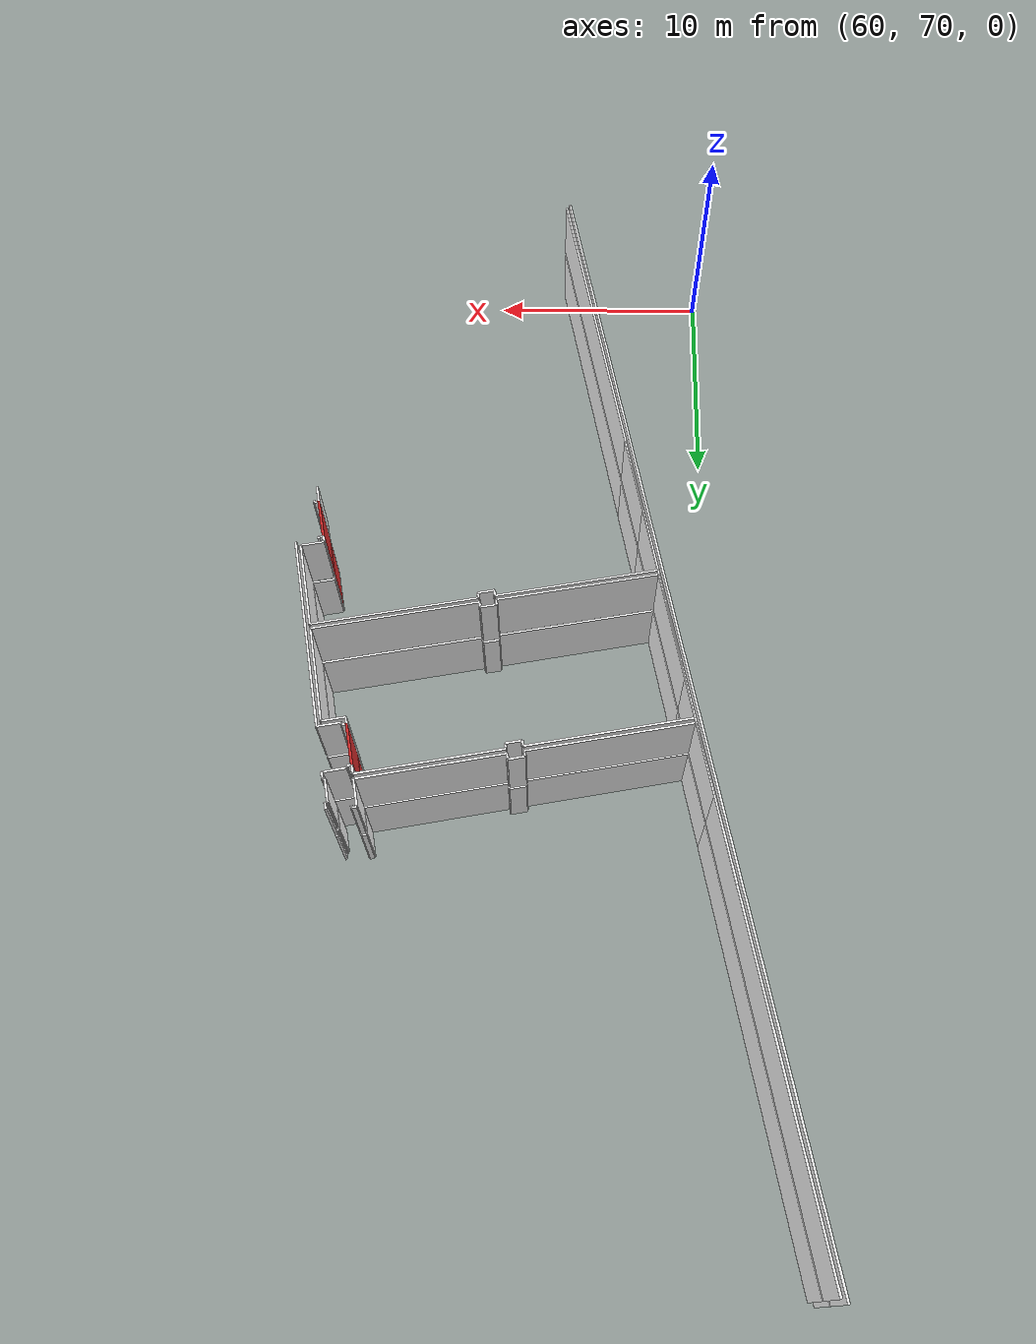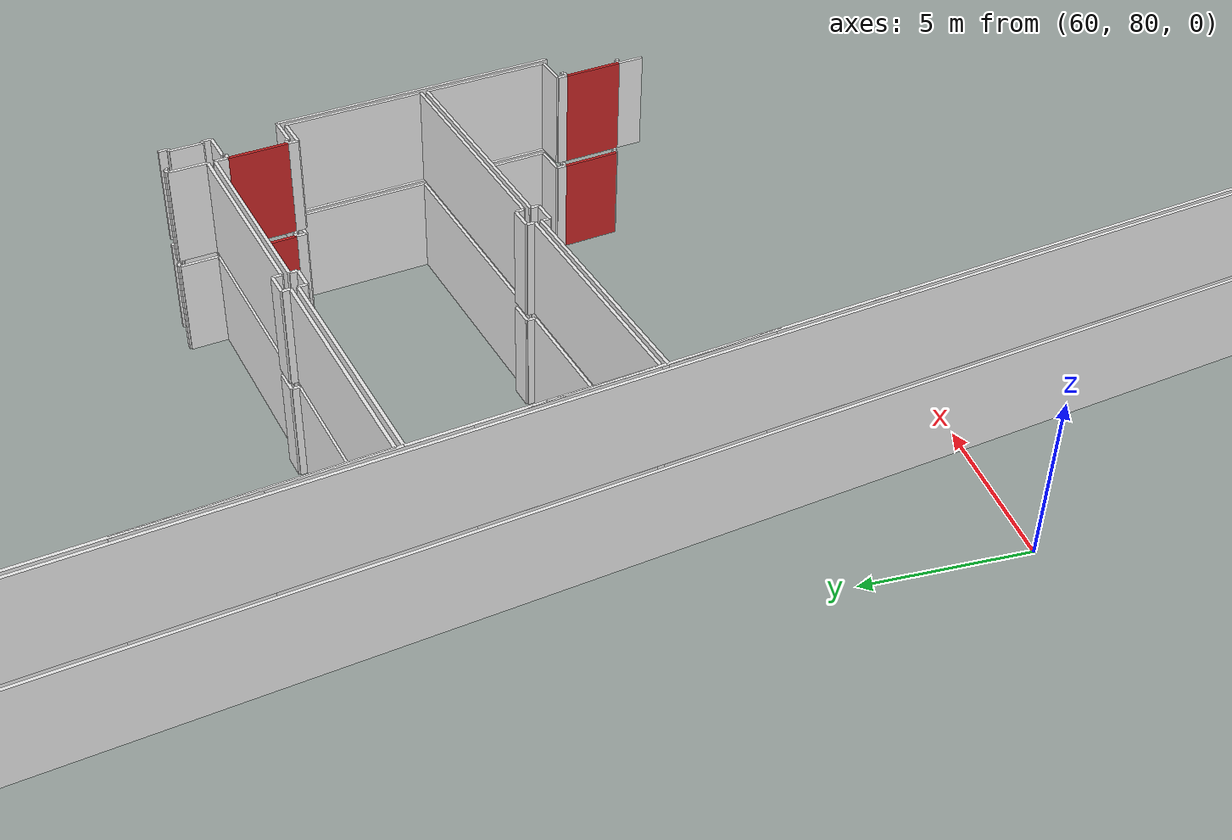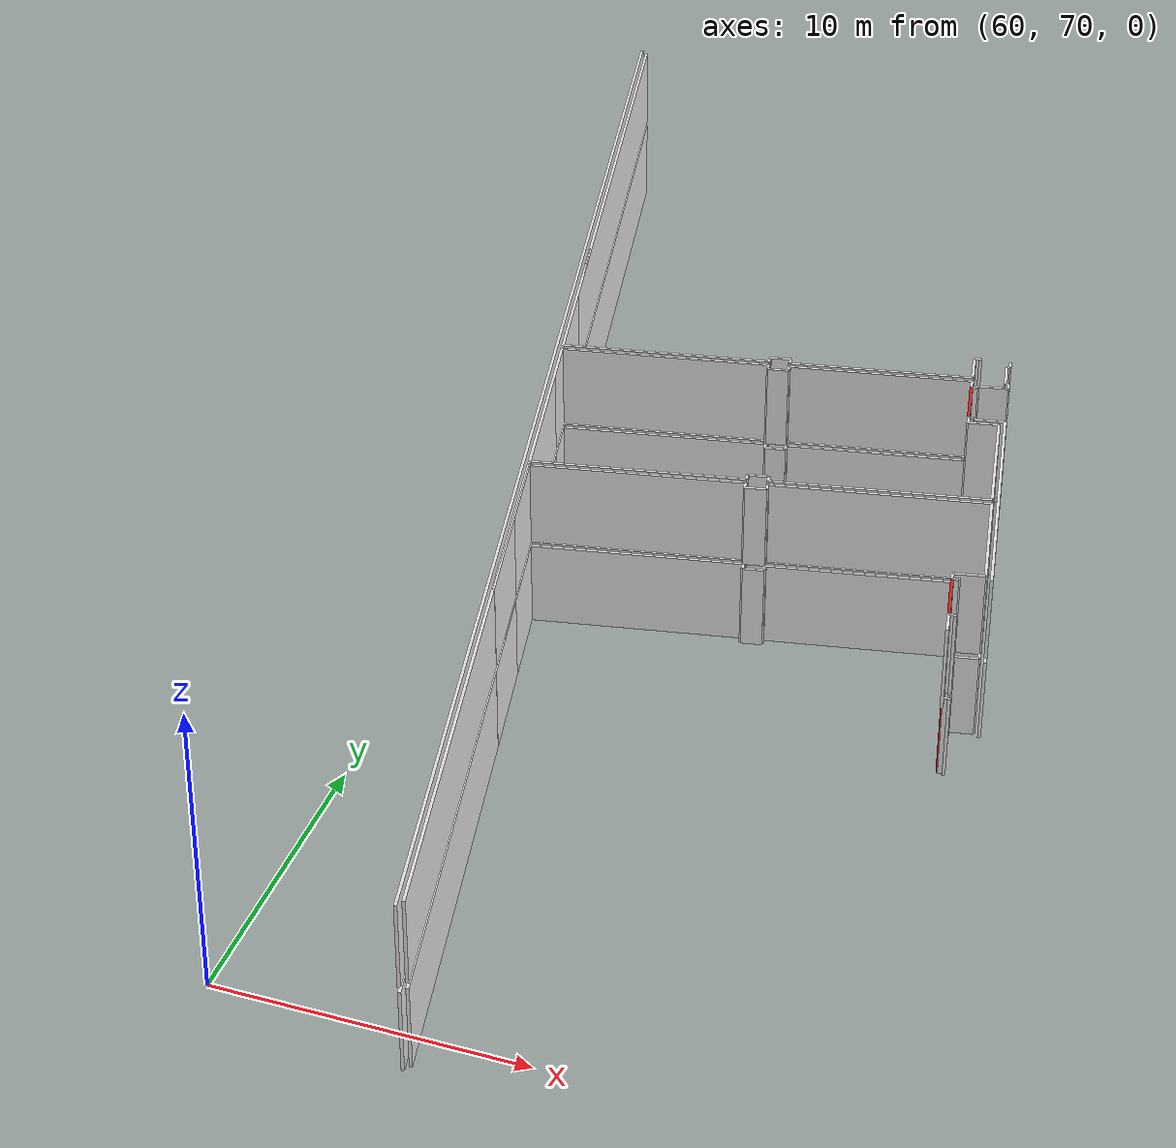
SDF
<sdf version="1.6">
 <world name="default">
  <model name="wall_75.1_97.8_0.0">
   <static>true</static>
   <pose>75.0800000000163 97.75 1.5 0 0 -1.3690339824572944</pose>
   <link name="link">
    <visual name="visual">
     <geometry><box><size>1.7964409256090668 0.1 3</size></box></geometry>
     <material>
      <script><uri>file://media/materials/scripts/gazebo.material</uri><name>Gazebo/Red</name></script>
     </material>
    </visual>
   </link>
  </model>
  <model name="wall_77.2_87.2_0.0">
   <static>true</static>
   <pose>77.19000000000233 87.18999999994412 1.5 0 0 -1.3690339824572944</pose>
   <link name="link">
    <visual name="visual">
     <geometry><box><size>1.7964409256090668 0.1 3</size></box></geometry>
     <material>
      <script><uri>file://media/materials/scripts/gazebo.material</uri><name>Gazebo/Red</name></script>
     </material>
    </visual>
   </link>
  </model>
  <model name="wall_60.6_99.9_0.0">
   <static>true</static>
   <pose>60.57499999998254 99.86999999987893 1.5 0 0 -1.3731111637109774</pose>
   <link name="link">
    <visual name="visual">
     <geometry><box><size>6.771890430431879 0.1 3</size></box></geometry>
     <material>
      <script><uri>file://media/materials/scripts/gazebo.material</uri><name>Gazebo/White</name></script>
     </material>
    </visual>
   </link>
  </model>
  <model name="wall_64.7_97.2_0.0">
   <static>true</static>
   <pose>64.67499999998836 97.2249999998603 1.5 0 0 0.19403422798469777</pose>
   <link name="link">
    <visual name="visual">
     <geometry><box><size>7.001385577168813 0.1 3</size></box></geometry>
     <material>
      <script><uri>file://media/materials/scripts/gazebo.material</uri><name>Gazebo/White</name></script>
     </material>
    </visual>
   </link>
  </model>
  <model name="wall_68.1_98.0_0.0">
   <static>true</static>
   <pose>68.08499999999185 98.02000000001863 1.5 0 0 1.7761917157522207</pose>
   <link name="link">
    <visual name="visual">
     <geometry><box><size>0.24515301365907008 0.1 3</size></box></geometry>
     <material>
      <script><uri>file://media/materials/scripts/gazebo.material</uri><name>Gazebo/White</name></script>
     </material>
    </visual>
   </link>
  </model>
  <model name="wall_68.4_98.2_0.0">
   <static>true</static>
   <pose>68.40499999999884 98.20999999996275 1.5 0 0 0.20018106749853645</pose>
   <link name="link">
    <visual name="visual">
     <geometry><box><size>0.7040596564988906 0.1 3</size></box></geometry>
     <material>
      <script><uri>file://media/materials/scripts/gazebo.material</uri><name>Gazebo/White</name></script>
     </material>
    </visual>
   </link>
  </model>
  <model name="wall_68.8_98.2_0.0">
   <static>true</static>
   <pose>68.76999999998952 98.15499999979511 1.5 0 0 -1.412141064690222</pose>
   <link name="link">
    <visual name="visual">
     <geometry><box><size>0.2531797780201326 0.1 3</size></box></geometry>
     <material>
      <script><uri>file://media/materials/scripts/gazebo.material</uri><name>Gazebo/White</name></script>
     </material>
    </visual>
   </link>
  </model>
  <model name="wall_71.8_98.6_0.0">
   <static>true</static>
   <pose>71.78999999997905 98.625 1.5 0 0 0.1957924833792323</pose>
   <link name="link">
    <visual name="visual">
     <geometry><box><size>6.11687011477073 0.1 3</size></box></geometry>
     <material>
      <script><uri>file://media/materials/scripts/gazebo.material</uri><name>Gazebo/White</name></script>
     </material>
    </visual>
   </link>
  </model>
  <model name="wall_74.7_99.8_0.0">
   <static>true</static>
   <pose>74.67499999998836 99.80000000004657 1.5 0 0 1.76653351340899</pose>
   <link name="link">
    <visual name="visual">
     <geometry><box><size>1.1825819207381807 0.1 3</size></box></geometry>
     <material>
      <script><uri>file://media/materials/scripts/gazebo.material</uri><name>Gazebo/White</name></script>
     </material>
    </visual>
   </link>
  </model>
  <model name="wall_74.9_98.8_0.0">
   <static>true</static>
   <pose>74.86500000001979 98.81999999983236 1.5 0 0 1.7529646373378367</pose>
   <link name="link">
    <visual name="visual">
     <geometry><box><size>0.3863935816185891 0.1 3</size></box></geometry>
     <material>
      <script><uri>file://media/materials/scripts/gazebo.material</uri><name>Gazebo/White</name></script>
     </material>
    </visual>
   </link>
  </model>
  <model name="wall_71.8_98.4_0.0">
   <static>true</static>
   <pose>71.8300000000163 98.4199999999255 1.5 0 0 -2.947404266883771</pose>
   <link name="link">
    <visual name="visual">
     <geometry><box><size>6.114932542497641 0.1 3</size></box></geometry>
     <material>
      <script><uri>file://media/materials/scripts/gazebo.material</uri><name>Gazebo/White</name></script>
     </material>
    </visual>
   </link>
  </model>
  <model name="wall_68.9_97.7_0.0">
   <static>true</static>
   <pose>68.85500000001048 97.70999999996275 1.5 0 0 -1.3654009378375724</pose>
   <link name="link">
    <visual name="visual">
     <geometry><box><size>0.24515301365907008 0.1 3</size></box></geometry>
     <material>
      <script><uri>file://media/materials/scripts/gazebo.material</uri><name>Gazebo/White</name></script>
     </material>
    </visual>
   </link>
  </model>
  <model name="wall_68.5_97.5_0.0">
   <static>true</static>
   <pose>68.54000000000815 97.52499999990687 1.5 0 0 -2.952695472868832</pose>
   <link name="link">
    <visual name="visual">
     <geometry><box><size>0.6923149571989928 0.1 3</size></box></geometry>
     <material>
      <script><uri>file://media/materials/scripts/gazebo.material</uri><name>Gazebo/White</name></script>
     </material>
    </visual>
   </link>
  </model>
  <model name="wall_68.2_97.6_0.0">
   <static>true</static>
   <pose>68.17500000001746 97.5800000000745 1.5 0 0 1.7761917157522207</pose>
   <link name="link">
    <visual name="visual">
     <geometry><box><size>0.24515301365907008 0.1 3</size></box></geometry>
     <material>
      <script><uri>file://media/materials/scripts/gazebo.material</uri><name>Gazebo/White</name></script>
     </material>
    </visual>
   </link>
  </model>
  <model name="wall_64.7_97.0_0.0">
   <static>true</static>
   <pose>64.71500000002561 97.02000000001863 1.5 0 0 -2.946157326410305</pose>
   <link name="link">
    <visual name="visual">
     <geometry><box><size>7.003320641013659 0.1 3</size></box></geometry>
     <material>
      <script><uri>file://media/materials/scripts/gazebo.material</uri><name>Gazebo/White</name></script>
     </material>
    </visual>
   </link>
  </model>
  <model name="wall_61.9_93.0_0.0">
   <static>true</static>
   <pose>61.94000000000233 93.02000000001863 1.5 0 0 -1.3745595149757288</pose>
   <link name="link">
    <visual name="visual">
     <geometry><box><size>6.769933529615509 0.1 3</size></box></geometry>
     <material>
      <script><uri>file://media/materials/scripts/gazebo.material</uri><name>Gazebo/White</name></script>
     </material>
    </visual>
   </link>
  </model>
  <model name="wall_66.0_90.4_0.0">
   <static>true</static>
   <pose>66.03499999997439 90.38000000012107 1.5 0 0 0.1954353271142626</pose>
   <link name="link">
    <visual name="visual">
     <geometry><box><size>7.0033206409232305 0.1 3</size></box></geometry>
     <material>
      <script><uri>file://media/materials/scripts/gazebo.material</uri><name>Gazebo/White</name></script>
     </material>
    </visual>
   </link>
  </model>
  <model name="wall_69.4_91.2_0.0">
   <static>true</static>
   <pose>69.44999999998254 91.17999999993481 1.5 0 0 1.7359450042881825</pose>
   <link name="link">
    <visual name="visual">
     <geometry><box><size>0.2433105009696346 0.1 3</size></box></geometry>
     <material>
      <script><uri>file://media/materials/scripts/gazebo.material</uri><name>Gazebo/White</name></script>
     </material>
    </visual>
   </link>
  </model>
  <model name="wall_69.8_91.4_0.0">
   <static>true</static>
   <pose>69.76999999998952 91.36499999999069 1.5 0 0 0.1888971813816114</pose>
   <link name="link">
    <visual name="visual">
     <geometry><box><size>0.6923149572864328 0.1 3</size></box></geometry>
     <material>
      <script><uri>file://media/materials/scripts/gazebo.material</uri><name>Gazebo/White</name></script>
     </material>
    </visual>
   </link>
  </model>
  <model name="wall_70.1_91.3_0.0">
   <static>true</static>
   <pose>70.13499999998021 91.31000000005588 1.5 0 0 -1.3654009378375724</pose>
   <link name="link">
    <visual name="visual">
     <geometry><box><size>0.24515301365907008 0.1 3</size></box></geometry>
     <material>
      <script><uri>file://media/materials/scripts/gazebo.material</uri><name>Gazebo/White</name></script>
     </material>
    </visual>
   </link>
  </model>
  <model name="wall_73.6_91.9_0.0">
   <static>true</static>
   <pose>73.64499999998952 91.87999999988824 1.5 0 0 0.1954634617685791</pose>
   <link name="link">
    <visual name="visual">
     <geometry><box><size>7.105300838114702 0.1 3</size></box></geometry>
     <material>
      <script><uri>file://media/materials/scripts/gazebo.material</uri><name>Gazebo/White</name></script>
     </material>
    </visual>
   </link>
  </model>
  <model name="wall_76.7_94.7_0.0">
   <static>true</static>
   <pose>76.71499999999651 94.6699999999255 1.5 0 0 1.765901464626056</pose>
   <link name="link">
    <visual name="visual">
     <geometry><box><size>4.281226459975188 0.1 3</size></box></geometry>
     <material>
      <script><uri>file://media/materials/scripts/gazebo.material</uri><name>Gazebo/White</name></script>
     </material>
    </visual>
   </link>
  </model>
  <model name="wall_75.8_96.7_0.0">
   <static>true</static>
   <pose>75.80999999999767 96.6699999999255 1.5 0 0 -2.9402755450289626</pose>
   <link name="link">
    <visual name="visual">
     <geometry><box><size>1.0001999800229942 0.1 3</size></box></geometry>
     <material>
      <script><uri>file://media/materials/scripts/gazebo.material</uri><name>Gazebo/White</name></script>
     </material>
    </visual>
   </link>
  </model>
  <model name="wall_75.3_96.7_0.0">
   <static>true</static>
   <pose>75.29000000000815 96.71999999997206 1.5 0 0 1.7681918864582145</pose>
   <link name="link">
    <visual name="visual">
     <geometry><box><size>0.30594117108908153 0.1 3</size></box></geometry>
     <material>
      <script><uri>file://media/materials/scripts/gazebo.material</uri><name>Gazebo/White</name></script>
     </material>
    </visual>
   </link>
  </model>
  <model name="wall_77.0_88.2_0.0">
   <static>true</static>
   <pose>76.98000000001048 88.21499999985099 1.5 0 0 1.7748143063542596</pose>
   <link name="link">
    <visual name="visual">
     <geometry><box><size>0.2961418579352255 0.1 3</size></box></geometry>
     <material>
      <script><uri>file://media/materials/scripts/gazebo.material</uri><name>Gazebo/White</name></script>
     </material>
    </visual>
   </link>
  </model>
  <model name="wall_77.4_88.5_0.0">
   <static>true</static>
   <pose>77.44500000000698 88.45999999996275 1.5 0 0 0.19933730516491843</pose>
   <link name="link">
    <visual name="visual">
     <geometry><box><size>1.0100000000277551 0.1 3</size></box></geometry>
     <material>
      <script><uri>file://media/materials/scripts/gazebo.material</uri><name>Gazebo/White</name></script>
     </material>
    </visual>
   </link>
  </model>
  <model name="wall_77.6_90.5_0.0">
   <static>true</static>
   <pose>77.55499999999302 90.46500000008382 1.5 0 0 1.7702100473778921</pose>
   <link name="link">
    <visual name="visual">
     <geometry><box><size>3.88702971437761 0.1 3</size></box></geometry>
     <material>
      <script><uri>file://media/materials/scripts/gazebo.material</uri><name>Gazebo/White</name></script>
     </material>
    </visual>
   </link>
  </model>
  <model name="wall_73.7_91.7_0.0">
   <static>true</static>
   <pose>73.68499999999767 91.68000000016764 1.5 0 0 -2.946129191819623</pose>
   <link name="link">
    <visual name="visual">
     <geometry><box><size>7.105300838057603 0.1 3</size></box></geometry>
     <material>
      <script><uri>file://media/materials/scripts/gazebo.material</uri><name>Gazebo/White</name></script>
     </material>
    </visual>
   </link>
  </model>
  <model name="wall_70.2_90.9_0.0">
   <static>true</static>
   <pose>70.22500000000582 90.87000000011176 1.5 0 0 -1.3654009378375724</pose>
   <link name="link">
    <visual name="visual">
     <geometry><box><size>0.24515301365907008 0.1 3</size></box></geometry>
     <material>
      <script><uri>file://media/materials/scripts/gazebo.material</uri><name>Gazebo/White</name></script>
     </material>
    </visual>
   </link>
  </model>
  <model name="wall_69.9_90.7_0.0">
   <static>true</static>
   <pose>69.90499999999884 90.67999999993481 1.5 0 0 -2.9414115854430696</pose>
   <link name="link">
    <visual name="visual">
     <geometry><box><size>0.7040596565914858 0.1 3</size></box></geometry>
     <material>
      <script><uri>file://media/materials/scripts/gazebo.material</uri><name>Gazebo/White</name></script>
     </material>
    </visual>
   </link>
  </model>
  <model name="wall_69.5_90.7_0.0">
   <static>true</static>
   <pose>69.53500000000349 90.73999999999069 1.5 0 0 1.7607846144977208</pose>
   <link name="link">
    <visual name="visual">
     <geometry><box><size>0.2647640461330629 0.1 3</size></box></geometry>
     <material>
      <script><uri>file://media/materials/scripts/gazebo.material</uri><name>Gazebo/White</name></script>
     </material>
    </visual>
   </link>
  </model>
  <model name="wall_66.1_90.2_0.0">
   <static>true</static>
   <pose>66.07500000001164 90.18500000005588 1.5 0 0 -2.94475700407996</pose>
   <link name="link">
    <visual name="visual">
     <geometry><box><size>7.005269445227802 0.1 3</size></box></geometry>
     <material>
      <script><uri>file://media/materials/scripts/gazebo.material</uri><name>Gazebo/White</name></script>
     </material>
    </visual>
   </link>
  </model>
  <model name="wall_63.3_86.2_0.0">
   <static>true</static>
   <pose>63.304999999993015 86.17999999993481 1.5 0 0 -1.3731111637194056</pose>
   <link name="link">
    <visual name="visual">
     <geometry><box><size>6.771890430420447 0.1 3</size></box></geometry>
     <material>
      <script><uri>file://media/materials/scripts/gazebo.material</uri><name>Gazebo/White</name></script>
     </material>
    </visual>
   </link>
  </model>
  <model name="wall_77.6_86.3_0.0">
   <static>true</static>
   <pose>77.57000000000698 86.30000000004657 1.5 0 0 1.7681918866447774</pose>
   <link name="link">
    <visual name="visual">
     <geometry><box><size>0.10198039036683233 0.1 3</size></box></geometry>
     <material>
      <script><uri>file://media/materials/scripts/gazebo.material</uri><name>Gazebo/White</name></script>
     </material>
    </visual>
   </link>
  </model>
  <model name="wall_77.5_86.3_0.0">
   <static>true</static>
   <pose>77.46499999999651 86.3300000000745 1.5 0 0 -2.9340964269693144</pose>
   <link name="link">
    <visual name="visual">
     <geometry><box><size>0.19416487839942884 0.1 3</size></box></geometry>
     <material>
      <script><uri>file://media/materials/scripts/gazebo.material</uri><name>Gazebo/White</name></script>
     </material>
    </visual>
   </link>
  </model>
  <model name="wall_77.1_88.1_0.0">
   <static>true</static>
   <pose>77.11000000001513 88.08999999985099 1.5 0 0 0.19739556001778746</pose>
   <link name="link">
    <visual name="visual">
     <geometry><box><size>0.20396078056243275 0.1 3</size></box></geometry>
     <material>
      <script><uri>file://media/materials/scripts/gazebo.material</uri><name>Gazebo/White</name></script>
     </material>
    </visual>
   </link>
  </model>
  <model name="wall_77.2_88.2_0.0">
   <static>true</static>
   <pose>77.20000000001164 88.15500000002794 1.5 0 0 1.7894652721210018</pose>
   <link name="link">
    <visual name="visual">
     <geometry><box><size>0.09219544488607884 0.1 3</size></box></geometry>
     <material>
      <script><uri>file://media/materials/scripts/gazebo.material</uri><name>Gazebo/White</name></script>
     </material>
    </visual>
   </link>
  </model>
  <model name="wall_77.3_92.7_0.0">
   <static>true</static>
   <pose>77.30999999999767 92.69999999995343 1.5 0 0 1.768191886639571</pose>
   <link name="link">
    <visual name="visual">
     <geometry><box><size>8.770313563465434 0.1 3</size></box></geometry>
     <material>
      <script><uri>file://media/materials/scripts/gazebo.material</uri><name>Gazebo/White</name></script>
     </material>
    </visual>
   </link>
  </model>
  <model name="wall_76.0_96.9_0.0">
   <static>true</static>
   <pose>75.95999999999185 96.90500000002794 1.5 0 0 -2.950090935182675</pose>
   <link name="link">
    <visual name="visual">
     <geometry><box><size>0.9982484660926583 0.1 3</size></box></geometry>
     <material>
      <script><uri>file://media/materials/scripts/gazebo.material</uri><name>Gazebo/White</name></script>
     </material>
    </visual>
   </link>
  </model>
  <model name="wall_75.5_96.9_0.0">
   <static>true</static>
   <pose>75.45999999999185 96.85499999998137 1.5 0 0 1.789465272600359</pose>
   <link name="link">
    <visual name="visual">
     <geometry><box><size>0.0921954444188793 0.1 3</size></box></geometry>
     <material>
      <script><uri>file://media/materials/scripts/gazebo.material</uri><name>Gazebo/White</name></script>
     </material>
    </visual>
   </link>
  </model>
  <model name="wall_75.4_96.9_0.0">
   <static>true</static>
   <pose>75.35500000001048 96.88500000000931 1.5 0 0 -2.9849907776618085</pose>
   <link name="link">
    <visual name="visual">
     <geometry><box><size>0.19235384058705793 0.1 3</size></box></geometry>
     <material>
      <script><uri>file://media/materials/scripts/gazebo.material</uri><name>Gazebo/White</name></script>
     </material>
    </visual>
   </link>
  </model>
  <model name="wall_75.0_98.6_0.0">
   <static>true</static>
   <pose>75.0 98.64999999990687 1.5 0 0 0.1973955600737564</pose>
   <link name="link">
    <visual name="visual">
     <geometry><box><size>0.20396078050535543 0.1 3</size></box></geometry>
     <material>
      <script><uri>file://media/materials/scripts/gazebo.material</uri><name>Gazebo/White</name></script>
     </material>
    </visual>
   </link>
  </model>
  <model name="wall_75.1_98.7_0.0">
   <static>true</static>
   <pose>75.09500000000116 98.71499999985099 1.5 0 0 1.6814535476138674</pose>
   <link name="link">
    <visual name="visual">
     <geometry><box><size>0.09055385122787446 0.1 3</size></box></geometry>
     <material>
      <script><uri>file://media/materials/scripts/gazebo.material</uri><name>Gazebo/White</name></script>
     </material>
    </visual>
   </link>
  </model>
  <model name="wall_75.6_98.9_0.0">
   <static>true</static>
   <pose>75.57500000001164 98.85999999986961 1.5 0 0 0.20333608421816718</pose>
   <link name="link">
    <visual name="visual">
     <geometry><box><size>0.99040395799911 0.1 3</size></box></geometry>
     <material>
      <script><uri>file://media/materials/scripts/gazebo.material</uri><name>Gazebo/White</name></script>
     </material>
    </visual>
   </link>
  </model>
  <model name="wall_76.0_99.1_0.0">
   <static>true</static>
   <pose>76.02999999999884 99.10499999998137 1.5 0 0 1.7748143063542596</pose>
   <link name="link">
    <visual name="visual">
     <geometry><box><size>0.2961418579352255 0.1 3</size></box></geometry>
     <material>
      <script><uri>file://media/materials/scripts/gazebo.material</uri><name>Gazebo/White</name></script>
     </material>
    </visual>
   </link>
  </model>
  <model name="wall_76.0_99.2_0.0">
   <static>true</static>
   <pose>75.9549999999872 99.23999999999069 1.5 0 0 -2.922923707578892</pose>
   <link name="link">
    <visual name="visual">
     <geometry><box><size>0.092195444601971 0.1 3</size></box></geometry>
     <material>
      <script><uri>file://media/materials/scripts/gazebo.material</uri><name>Gazebo/White</name></script>
     </material>
    </visual>
   </link>
  </model>
  <model name="wall_75.8_99.7_0.0">
   <static>true</static>
   <pose>75.80999999999767 99.71999999997206 1.5 0 0 1.7721134351276446</pose>
   <link name="link">
    <visual name="visual">
     <geometry><box><size>1.0001999799764374 0.1 3</size></box></geometry>
     <material>
      <script><uri>file://media/materials/scripts/gazebo.material</uri><name>Gazebo/White</name></script>
     </material>
    </visual>
   </link>
  </model>
  <model name="wall_75.8_100.2_0.0">
   <static>true</static>
   <pose>75.76000000000931 100.21999999997206 1.5 0 0 0.1973955600737564</pose>
   <link name="link">
    <visual name="visual">
     <geometry><box><size>0.10198039025267772 0.1 3</size></box></geometry>
     <material>
      <script><uri>file://media/materials/scripts/gazebo.material</uri><name>Gazebo/White</name></script>
     </material>
    </visual>
   </link>
  </model>
  <model name="wall_75.8_100.4_0.0">
   <static>true</static>
   <pose>75.77999999999884 100.375 1.5 0 0 1.7748143063542596</pose>
   <link name="link">
    <visual name="visual">
     <geometry><box><size>0.2961418579352255 0.1 3</size></box></geometry>
     <material>
      <script><uri>file://media/materials/scripts/gazebo.material</uri><name>Gazebo/White</name></script>
     </material>
    </visual>
   </link>
  </model>
  <model name="wall_74.8_100.4_0.0">
   <static>true</static>
   <pose>74.76000000000931 100.375 1.5 0 0 1.7894652732166754</pose>
   <link name="link">
    <visual name="visual">
     <geometry><box><size>0.0921954444315063 0.1 3</size></box></geometry>
     <material>
      <script><uri>file://media/materials/scripts/gazebo.material</uri><name>Gazebo/White</name></script>
     </material>
    </visual>
   </link>
  </model>
  <model name="wall_74.7_100.4_0.0">
   <static>true</static>
   <pose>74.65499999999884 100.39999999990687 1.5 0 0 -2.9340964269693144</pose>
   <link name="link">
    <visual name="visual">
     <geometry><box><size>0.19416487839942884 0.1 3</size></box></geometry>
     <material>
      <script><uri>file://media/materials/scripts/gazebo.material</uri><name>Gazebo/White</name></script>
     </material>
    </visual>
   </link>
  </model>
  <model name="wall_61.7_93.1_0.0">
   <static>true</static>
   <pose>61.72499999997672 93.08999999985099 1.5 0 0 -1.3737551674021267</pose>
   <link name="link">
    <visual name="visual">
     <geometry><box><size>49.803695645859904 0.1 3</size></box></geometry>
     <material>
      <script><uri>file://media/materials/scripts/gazebo.material</uri><name>Gazebo/White</name></script>
     </material>
    </visual>
   </link>
  </model>
  <model name="wall_61.9_93.1_0.0">
   <static>true</static>
   <pose>61.920000000012806 93.125 1.5 0 0 1.767596435957684</pose>
   <link name="link">
    <visual name="visual">
     <geometry><box><size>49.4036243611494 0.1 3</size></box></geometry>
     <material>
      <script><uri>file://media/materials/scripts/gazebo.material</uri><name>Gazebo/White</name></script>
     </material>
    </visual>
   </link>
  </model>
  <model name="wall_75.1_97.8_3.2">
   <static>true</static>
   <pose>75.0800000000163 97.75 4.7 0 0 -1.3690339824572944</pose>
   <link name="link">
    <visual name="visual">
     <geometry><box><size>1.7964409256090668 0.1 3</size></box></geometry>
     <material>
      <script><uri>file://media/materials/scripts/gazebo.material</uri><name>Gazebo/Red</name></script>
     </material>
    </visual>
   </link>
  </model>
  <model name="wall_77.2_87.2_3.2">
   <static>true</static>
   <pose>77.19000000000233 87.18999999994412 4.7 0 0 -1.3690339824572944</pose>
   <link name="link">
    <visual name="visual">
     <geometry><box><size>1.7964409256090668 0.1 3</size></box></geometry>
     <material>
      <script><uri>file://media/materials/scripts/gazebo.material</uri><name>Gazebo/Red</name></script>
     </material>
    </visual>
   </link>
  </model>
  <model name="wall_60.6_99.9_3.2">
   <static>true</static>
   <pose>60.57499999998254 99.86999999987893 4.7 0 0 -1.3731111637109774</pose>
   <link name="link">
    <visual name="visual">
     <geometry><box><size>6.771890430431879 0.1 3</size></box></geometry>
     <material>
      <script><uri>file://media/materials/scripts/gazebo.material</uri><name>Gazebo/White</name></script>
     </material>
    </visual>
   </link>
  </model>
  <model name="wall_64.7_97.2_3.2">
   <static>true</static>
   <pose>64.67499999998836 97.2249999998603 4.7 0 0 0.19403422798469777</pose>
   <link name="link">
    <visual name="visual">
     <geometry><box><size>7.001385577168813 0.1 3</size></box></geometry>
     <material>
      <script><uri>file://media/materials/scripts/gazebo.material</uri><name>Gazebo/White</name></script>
     </material>
    </visual>
   </link>
  </model>
  <model name="wall_68.1_98.0_3.2">
   <static>true</static>
   <pose>68.08499999999185 98.02000000001863 4.7 0 0 1.7761917157522207</pose>
   <link name="link">
    <visual name="visual">
     <geometry><box><size>0.24515301365907008 0.1 3</size></box></geometry>
     <material>
      <script><uri>file://media/materials/scripts/gazebo.material</uri><name>Gazebo/White</name></script>
     </material>
    </visual>
   </link>
  </model>
  <model name="wall_68.4_98.2_3.2">
   <static>true</static>
   <pose>68.40499999999884 98.20999999996275 4.7 0 0 0.20018106749853645</pose>
   <link name="link">
    <visual name="visual">
     <geometry><box><size>0.7040596564988906 0.1 3</size></box></geometry>
     <material>
      <script><uri>file://media/materials/scripts/gazebo.material</uri><name>Gazebo/White</name></script>
     </material>
    </visual>
   </link>
  </model>
  <model name="wall_68.8_98.2_3.2">
   <static>true</static>
   <pose>68.76999999998952 98.15499999979511 4.7 0 0 -1.412141064690222</pose>
   <link name="link">
    <visual name="visual">
     <geometry><box><size>0.2531797780201326 0.1 3</size></box></geometry>
     <material>
      <script><uri>file://media/materials/scripts/gazebo.material</uri><name>Gazebo/White</name></script>
     </material>
    </visual>
   </link>
  </model>
  <model name="wall_71.8_98.6_3.2">
   <static>true</static>
   <pose>71.78999999997905 98.625 4.7 0 0 0.1957924833792323</pose>
   <link name="link">
    <visual name="visual">
     <geometry><box><size>6.11687011477073 0.1 3</size></box></geometry>
     <material>
      <script><uri>file://media/materials/scripts/gazebo.material</uri><name>Gazebo/White</name></script>
     </material>
    </visual>
   </link>
  </model>
  <model name="wall_74.7_99.8_3.2">
   <static>true</static>
   <pose>74.67499999998836 99.80000000004657 4.7 0 0 1.76653351340899</pose>
   <link name="link">
    <visual name="visual">
     <geometry><box><size>1.1825819207381807 0.1 3</size></box></geometry>
     <material>
      <script><uri>file://media/materials/scripts/gazebo.material</uri><name>Gazebo/White</name></script>
     </material>
    </visual>
   </link>
  </model>
  <model name="wall_74.9_98.8_3.2">
   <static>true</static>
   <pose>74.86500000001979 98.81999999983236 4.7 0 0 1.7529646373378367</pose>
   <link name="link">
    <visual name="visual">
     <geometry><box><size>0.3863935816185891 0.1 3</size></box></geometry>
     <material>
      <script><uri>file://media/materials/scripts/gazebo.material</uri><name>Gazebo/White</name></script>
     </material>
    </visual>
   </link>
  </model>
  <model name="wall_71.8_98.4_3.2">
   <static>true</static>
   <pose>71.8300000000163 98.4199999999255 4.7 0 0 -2.947404266883771</pose>
   <link name="link">
    <visual name="visual">
     <geometry><box><size>6.114932542497641 0.1 3</size></box></geometry>
     <material>
      <script><uri>file://media/materials/scripts/gazebo.material</uri><name>Gazebo/White</name></script>
     </material>
    </visual>
   </link>
  </model>
  <model name="wall_68.9_97.7_3.2">
   <static>true</static>
   <pose>68.85500000001048 97.70999999996275 4.7 0 0 -1.3654009378375724</pose>
   <link name="link">
    <visual name="visual">
     <geometry><box><size>0.24515301365907008 0.1 3</size></box></geometry>
     <material>
      <script><uri>file://media/materials/scripts/gazebo.material</uri><name>Gazebo/White</name></script>
     </material>
    </visual>
   </link>
  </model>
  <model name="wall_68.5_97.5_3.2">
   <static>true</static>
   <pose>68.54000000000815 97.52499999990687 4.7 0 0 -2.952695472868832</pose>
   <link name="link">
    <visual name="visual">
     <geometry><box><size>0.6923149571989928 0.1 3</size></box></geometry>
     <material>
      <script><uri>file://media/materials/scripts/gazebo.material</uri><name>Gazebo/White</name></script>
     </material>
    </visual>
   </link>
  </model>
  <model name="wall_68.2_97.6_3.2">
   <static>true</static>
   <pose>68.17500000001746 97.5800000000745 4.7 0 0 1.7761917157522207</pose>
   <link name="link">
    <visual name="visual">
     <geometry><box><size>0.24515301365907008 0.1 3</size></box></geometry>
     <material>
      <script><uri>file://media/materials/scripts/gazebo.material</uri><name>Gazebo/White</name></script>
     </material>
    </visual>
   </link>
  </model>
  <model name="wall_64.7_97.0_3.2">
   <static>true</static>
   <pose>64.71500000002561 97.02000000001863 4.7 0 0 -2.946157326410305</pose>
   <link name="link">
    <visual name="visual">
     <geometry><box><size>7.003320641013659 0.1 3</size></box></geometry>
     <material>
      <script><uri>file://media/materials/scripts/gazebo.material</uri><name>Gazebo/White</name></script>
     </material>
    </visual>
   </link>
  </model>
  <model name="wall_61.9_93.0_3.2">
   <static>true</static>
   <pose>61.94000000000233 93.02000000001863 4.7 0 0 -1.3745595149757288</pose>
   <link name="link">
    <visual name="visual">
     <geometry><box><size>6.769933529615509 0.1 3</size></box></geometry>
     <material>
      <script><uri>file://media/materials/scripts/gazebo.material</uri><name>Gazebo/White</name></script>
     </material>
    </visual>
   </link>
  </model>
  <model name="wall_66.0_90.4_3.2">
   <static>true</static>
   <pose>66.03499999997439 90.38000000012107 4.7 0 0 0.1954353271142626</pose>
   <link name="link">
    <visual name="visual">
     <geometry><box><size>7.0033206409232305 0.1 3</size></box></geometry>
     <material>
      <script><uri>file://media/materials/scripts/gazebo.material</uri><name>Gazebo/White</name></script>
     </material>
    </visual>
   </link>
  </model>
  <model name="wall_69.4_91.2_3.2">
   <static>true</static>
   <pose>69.44999999998254 91.17999999993481 4.7 0 0 1.7359450042881825</pose>
   <link name="link">
    <visual name="visual">
     <geometry><box><size>0.2433105009696346 0.1 3</size></box></geometry>
     <material>
      <script><uri>file://media/materials/scripts/gazebo.material</uri><name>Gazebo/White</name></script>
     </material>
    </visual>
   </link>
  </model>
  <model name="wall_69.8_91.4_3.2">
   <static>true</static>
   <pose>69.76999999998952 91.36499999999069 4.7 0 0 0.1888971813816114</pose>
   <link name="link">
    <visual name="visual">
     <geometry><box><size>0.6923149572864328 0.1 3</size></box></geometry>
     <material>
      <script><uri>file://media/materials/scripts/gazebo.material</uri><name>Gazebo/White</name></script>
     </material>
    </visual>
   </link>
  </model>
  <model name="wall_70.1_91.3_3.2">
   <static>true</static>
   <pose>70.13499999998021 91.31000000005588 4.7 0 0 -1.3654009378375724</pose>
   <link name="link">
    <visual name="visual">
     <geometry><box><size>0.24515301365907008 0.1 3</size></box></geometry>
     <material>
      <script><uri>file://media/materials/scripts/gazebo.material</uri><name>Gazebo/White</name></script>
     </material>
    </visual>
   </link>
  </model>
  <model name="wall_73.6_91.9_3.2">
   <static>true</static>
   <pose>73.64499999998952 91.87999999988824 4.7 0 0 0.1954634617685791</pose>
   <link name="link">
    <visual name="visual">
     <geometry><box><size>7.105300838114702 0.1 3</size></box></geometry>
     <material>
      <script><uri>file://media/materials/scripts/gazebo.material</uri><name>Gazebo/White</name></script>
     </material>
    </visual>
   </link>
  </model>
  <model name="wall_76.7_94.7_3.2">
   <static>true</static>
   <pose>76.71499999999651 94.6699999999255 4.7 0 0 1.765901464626056</pose>
   <link name="link">
    <visual name="visual">
     <geometry><box><size>4.281226459975188 0.1 3</size></box></geometry>
     <material>
      <script><uri>file://media/materials/scripts/gazebo.material</uri><name>Gazebo/White</name></script>
     </material>
    </visual>
   </link>
  </model>
  <model name="wall_75.8_96.7_3.2">
   <static>true</static>
   <pose>75.80999999999767 96.6699999999255 4.7 0 0 -2.9402755450289626</pose>
   <link name="link">
    <visual name="visual">
     <geometry><box><size>1.0001999800229942 0.1 3</size></box></geometry>
     <material>
      <script><uri>file://media/materials/scripts/gazebo.material</uri><name>Gazebo/White</name></script>
     </material>
    </visual>
   </link>
  </model>
  <model name="wall_75.3_96.7_3.2">
   <static>true</static>
   <pose>75.29000000000815 96.71999999997206 4.7 0 0 1.7681918864582145</pose>
   <link name="link">
    <visual name="visual">
     <geometry><box><size>0.30594117108908153 0.1 3</size></box></geometry>
     <material>
      <script><uri>file://media/materials/scripts/gazebo.material</uri><name>Gazebo/White</name></script>
     </material>
    </visual>
   </link>
  </model>
  <model name="wall_77.0_88.2_3.2">
   <static>true</static>
   <pose>76.98000000001048 88.21499999985099 4.7 0 0 1.7748143063542596</pose>
   <link name="link">
    <visual name="visual">
     <geometry><box><size>0.2961418579352255 0.1 3</size></box></geometry>
     <material>
      <script><uri>file://media/materials/scripts/gazebo.material</uri><name>Gazebo/White</name></script>
     </material>
    </visual>
   </link>
  </model>
  <model name="wall_77.4_88.5_3.2">
   <static>true</static>
   <pose>77.44500000000698 88.45999999996275 4.7 0 0 0.19933730516491843</pose>
   <link name="link">
    <visual name="visual">
     <geometry><box><size>1.0100000000277551 0.1 3</size></box></geometry>
     <material>
      <script><uri>file://media/materials/scripts/gazebo.material</uri><name>Gazebo/White</name></script>
     </material>
    </visual>
   </link>
  </model>
  <model name="wall_77.6_90.5_3.2">
   <static>true</static>
   <pose>77.55499999999302 90.46500000008382 4.7 0 0 1.7702100473778921</pose>
   <link name="link">
    <visual name="visual">
     <geometry><box><size>3.88702971437761 0.1 3</size></box></geometry>
     <material>
      <script><uri>file://media/materials/scripts/gazebo.material</uri><name>Gazebo/White</name></script>
     </material>
    </visual>
   </link>
  </model>
  <model name="wall_73.7_91.7_3.2">
   <static>true</static>
   <pose>73.68499999999767 91.68000000016764 4.7 0 0 -2.946129191819623</pose>
   <link name="link">
    <visual name="visual">
     <geometry><box><size>7.105300838057603 0.1 3</size></box></geometry>
     <material>
      <script><uri>file://media/materials/scripts/gazebo.material</uri><name>Gazebo/White</name></script>
     </material>
    </visual>
   </link>
  </model>
  <model name="wall_70.2_90.9_3.2">
   <static>true</static>
   <pose>70.22500000000582 90.87000000011176 4.7 0 0 -1.3654009378375724</pose>
   <link name="link">
    <visual name="visual">
     <geometry><box><size>0.24515301365907008 0.1 3</size></box></geometry>
     <material>
      <script><uri>file://media/materials/scripts/gazebo.material</uri><name>Gazebo/White</name></script>
     </material>
    </visual>
   </link>
  </model>
  <model name="wall_69.9_90.7_3.2">
   <static>true</static>
   <pose>69.90499999999884 90.67999999993481 4.7 0 0 -2.9414115854430696</pose>
   <link name="link">
    <visual name="visual">
     <geometry><box><size>0.7040596565914858 0.1 3</size></box></geometry>
     <material>
      <script><uri>file://media/materials/scripts/gazebo.material</uri><name>Gazebo/White</name></script>
     </material>
    </visual>
   </link>
  </model>
  <model name="wall_69.5_90.7_3.2">
   <static>true</static>
   <pose>69.53500000000349 90.73999999999069 4.7 0 0 1.7607846144977208</pose>
   <link name="link">
    <visual name="visual">
     <geometry><box><size>0.2647640461330629 0.1 3</size></box></geometry>
     <material>
      <script><uri>file://media/materials/scripts/gazebo.material</uri><name>Gazebo/White</name></script>
     </material>
    </visual>
   </link>
  </model>
  <model name="wall_66.1_90.2_3.2">
   <static>true</static>
   <pose>66.07500000001164 90.18500000005588 4.7 0 0 -2.94475700407996</pose>
   <link name="link">
    <visual name="visual">
     <geometry><box><size>7.005269445227802 0.1 3</size></box></geometry>
     <material>
      <script><uri>file://media/materials/scripts/gazebo.material</uri><name>Gazebo/White</name></script>
     </material>
    </visual>
   </link>
  </model>
  <model name="wall_63.3_86.2_3.2">
   <static>true</static>
   <pose>63.304999999993015 86.17999999993481 4.7 0 0 -1.3731111637194056</pose>
   <link name="link">
    <visual name="visual">
     <geometry><box><size>6.771890430420447 0.1 3</size></box></geometry>
     <material>
      <script><uri>file://media/materials/scripts/gazebo.material</uri><name>Gazebo/White</name></script>
     </material>
    </visual>
   </link>
  </model>
  <model name="wall_77.4_85.9_3.2">
   <static>true</static>
   <pose>77.44500000000698 85.9199999999255 4.7 0 0 1.7607846146803983</pose>
   <link name="link">
    <visual name="visual">
     <geometry><box><size>0.7942921379528988 0.1 3</size></box></geometry>
     <material>
      <script><uri>file://media/materials/scripts/gazebo.material</uri><name>Gazebo/White</name></script>
     </material>
    </visual>
   </link>
  </model>
  <model name="wall_77.6_86.3_3.2">
   <static>true</static>
   <pose>77.57000000000698 86.30000000004657 4.7 0 0 1.7681918866447774</pose>
   <link name="link">
    <visual name="visual">
     <geometry><box><size>0.10198039036683233 0.1 3</size></box></geometry>
     <material>
      <script><uri>file://media/materials/scripts/gazebo.material</uri><name>Gazebo/White</name></script>
     </material>
    </visual>
   </link>
  </model>
  <model name="wall_77.5_86.3_3.2">
   <static>true</static>
   <pose>77.46499999999651 86.3300000000745 4.7 0 0 -2.9340964269693144</pose>
   <link name="link">
    <visual name="visual">
     <geometry><box><size>0.19416487839942884 0.1 3</size></box></geometry>
     <material>
      <script><uri>file://media/materials/scripts/gazebo.material</uri><name>Gazebo/White</name></script>
     </material>
    </visual>
   </link>
  </model>
  <model name="wall_77.1_88.1_3.2">
   <static>true</static>
   <pose>77.11000000001513 88.08999999985099 4.7 0 0 0.19739556001778746</pose>
   <link name="link">
    <visual name="visual">
     <geometry><box><size>0.20396078056243275 0.1 3</size></box></geometry>
     <material>
      <script><uri>file://media/materials/scripts/gazebo.material</uri><name>Gazebo/White</name></script>
     </material>
    </visual>
   </link>
  </model>
  <model name="wall_77.2_88.2_3.2">
   <static>true</static>
   <pose>77.20000000001164 88.15500000002794 4.7 0 0 1.7894652721210018</pose>
   <link name="link">
    <visual name="visual">
     <geometry><box><size>0.09219544488607884 0.1 3</size></box></geometry>
     <material>
      <script><uri>file://media/materials/scripts/gazebo.material</uri><name>Gazebo/White</name></script>
     </material>
    </visual>
   </link>
  </model>
  <model name="wall_77.3_92.7_3.2">
   <static>true</static>
   <pose>77.30999999999767 92.69999999995343 4.7 0 0 1.768191886639571</pose>
   <link name="link">
    <visual name="visual">
     <geometry><box><size>8.770313563465434 0.1 3</size></box></geometry>
     <material>
      <script><uri>file://media/materials/scripts/gazebo.material</uri><name>Gazebo/White</name></script>
     </material>
    </visual>
   </link>
  </model>
  <model name="wall_76.0_96.9_3.2">
   <static>true</static>
   <pose>75.95999999999185 96.90500000002794 4.7 0 0 -2.950090935182675</pose>
   <link name="link">
    <visual name="visual">
     <geometry><box><size>0.9982484660926583 0.1 3</size></box></geometry>
     <material>
      <script><uri>file://media/materials/scripts/gazebo.material</uri><name>Gazebo/White</name></script>
     </material>
    </visual>
   </link>
  </model>
  <model name="wall_75.5_96.9_3.2">
   <static>true</static>
   <pose>75.45999999999185 96.85499999998137 4.7 0 0 1.789465272600359</pose>
   <link name="link">
    <visual name="visual">
     <geometry><box><size>0.0921954444188793 0.1 3</size></box></geometry>
     <material>
      <script><uri>file://media/materials/scripts/gazebo.material</uri><name>Gazebo/White</name></script>
     </material>
    </visual>
   </link>
  </model>
  <model name="wall_75.4_96.9_3.2">
   <static>true</static>
   <pose>75.35500000001048 96.88500000000931 4.7 0 0 -2.9849907776618085</pose>
   <link name="link">
    <visual name="visual">
     <geometry><box><size>0.19235384058705793 0.1 3</size></box></geometry>
     <material>
      <script><uri>file://media/materials/scripts/gazebo.material</uri><name>Gazebo/White</name></script>
     </material>
    </visual>
   </link>
  </model>
  <model name="wall_75.0_98.6_3.2">
   <static>true</static>
   <pose>75.0 98.64999999990687 4.7 0 0 0.1973955600737564</pose>
   <link name="link">
    <visual name="visual">
     <geometry><box><size>0.20396078050535543 0.1 3</size></box></geometry>
     <material>
      <script><uri>file://media/materials/scripts/gazebo.material</uri><name>Gazebo/White</name></script>
     </material>
    </visual>
   </link>
  </model>
  <model name="wall_75.1_98.7_3.2">
   <static>true</static>
   <pose>75.09500000000116 98.71499999985099 4.7 0 0 1.6814535476138674</pose>
   <link name="link">
    <visual name="visual">
     <geometry><box><size>0.09055385122787446 0.1 3</size></box></geometry>
     <material>
      <script><uri>file://media/materials/scripts/gazebo.material</uri><name>Gazebo/White</name></script>
     </material>
    </visual>
   </link>
  </model>
  <model name="wall_75.6_98.9_3.2">
   <static>true</static>
   <pose>75.57500000001164 98.85999999986961 4.7 0 0 0.20333608421816718</pose>
   <link name="link">
    <visual name="visual">
     <geometry><box><size>0.99040395799911 0.1 3</size></box></geometry>
     <material>
      <script><uri>file://media/materials/scripts/gazebo.material</uri><name>Gazebo/White</name></script>
     </material>
    </visual>
   </link>
  </model>
  <model name="wall_76.0_99.1_3.2">
   <static>true</static>
   <pose>76.02999999999884 99.10499999998137 4.7 0 0 1.7748143063542596</pose>
   <link name="link">
    <visual name="visual">
     <geometry><box><size>0.2961418579352255 0.1 3</size></box></geometry>
     <material>
      <script><uri>file://media/materials/scripts/gazebo.material</uri><name>Gazebo/White</name></script>
     </material>
    </visual>
   </link>
  </model>
  <model name="wall_76.0_99.2_3.2">
   <static>true</static>
   <pose>75.9549999999872 99.23999999999069 4.7 0 0 -2.922923707578892</pose>
   <link name="link">
    <visual name="visual">
     <geometry><box><size>0.092195444601971 0.1 3</size></box></geometry>
     <material>
      <script><uri>file://media/materials/scripts/gazebo.material</uri><name>Gazebo/White</name></script>
     </material>
    </visual>
   </link>
  </model>
  <model name="wall_75.8_99.7_3.2">
   <static>true</static>
   <pose>75.80999999999767 99.71999999997206 4.7 0 0 1.7721134351276446</pose>
   <link name="link">
    <visual name="visual">
     <geometry><box><size>1.0001999799764374 0.1 3</size></box></geometry>
     <material>
      <script><uri>file://media/materials/scripts/gazebo.material</uri><name>Gazebo/White</name></script>
     </material>
    </visual>
   </link>
  </model>
  <model name="wall_75.8_100.2_3.2">
   <static>true</static>
   <pose>75.76000000000931 100.21999999997206 4.7 0 0 0.1973955600737564</pose>
   <link name="link">
    <visual name="visual">
     <geometry><box><size>0.10198039025267772 0.1 3</size></box></geometry>
     <material>
      <script><uri>file://media/materials/scripts/gazebo.material</uri><name>Gazebo/White</name></script>
     </material>
    </visual>
   </link>
  </model>
  <model name="wall_75.8_100.4_3.2">
   <static>true</static>
   <pose>75.77999999999884 100.375 4.7 0 0 1.7748143063542596</pose>
   <link name="link">
    <visual name="visual">
     <geometry><box><size>0.2961418579352255 0.1 3</size></box></geometry>
     <material>
      <script><uri>file://media/materials/scripts/gazebo.material</uri><name>Gazebo/White</name></script>
     </material>
    </visual>
   </link>
  </model>
  <model name="wall_74.8_100.4_3.2">
   <static>true</static>
   <pose>74.76000000000931 100.375 4.7 0 0 1.7894652732166754</pose>
   <link name="link">
    <visual name="visual">
     <geometry><box><size>0.0921954444315063 0.1 3</size></box></geometry>
     <material>
      <script><uri>file://media/materials/scripts/gazebo.material</uri><name>Gazebo/White</name></script>
     </material>
    </visual>
   </link>
  </model>
  <model name="wall_74.7_100.4_3.2">
   <static>true</static>
   <pose>74.65499999999884 100.39999999990687 4.7 0 0 -2.9340964269693144</pose>
   <link name="link">
    <visual name="visual">
     <geometry><box><size>0.19416487839942884 0.1 3</size></box></geometry>
     <material>
      <script><uri>file://media/materials/scripts/gazebo.material</uri><name>Gazebo/White</name></script>
     </material>
    </visual>
   </link>
  </model>
  <model name="wall_61.7_93.1_3.2">
   <static>true</static>
   <pose>61.72499999997672 93.08999999985099 4.7 0 0 -1.3737551674021267</pose>
   <link name="link">
    <visual name="visual">
     <geometry><box><size>49.803695645859904 0.1 3</size></box></geometry>
     <material>
      <script><uri>file://media/materials/scripts/gazebo.material</uri><name>Gazebo/White</name></script>
     </material>
    </visual>
   </link>
  </model>
  <model name="wall_61.9_93.1_3.2">
   <static>true</static>
   <pose>61.920000000012806 93.125 4.7 0 0 1.767596435957684</pose>
   <link name="link">
    <visual name="visual">
     <geometry><box><size>49.4036243611494 0.1 3</size></box></geometry>
     <material>
      <script><uri>file://media/materials/scripts/gazebo.material</uri><name>Gazebo/White</name></script>
     </material>
    </visual>
   </link>
  </model>
 </world>
</sdf>
